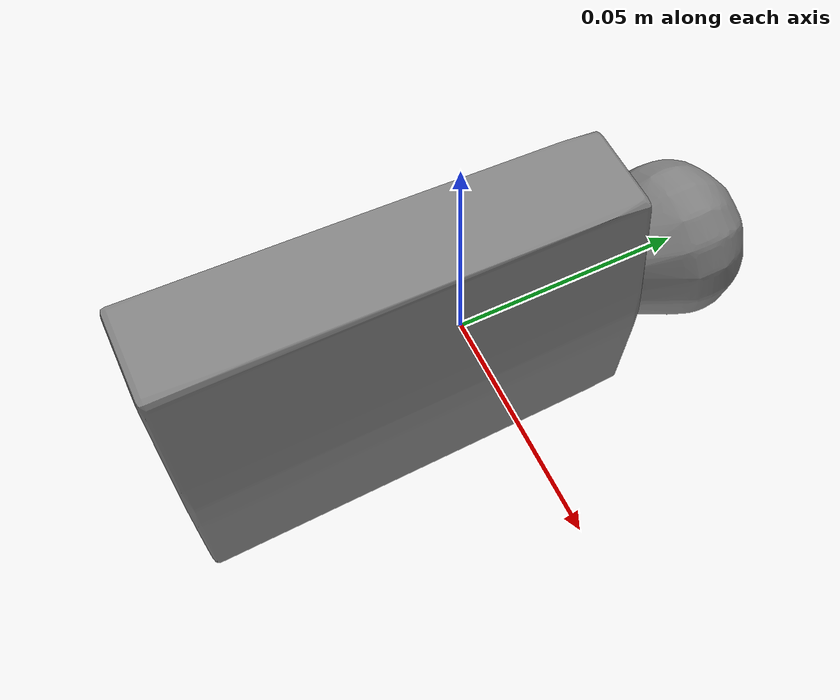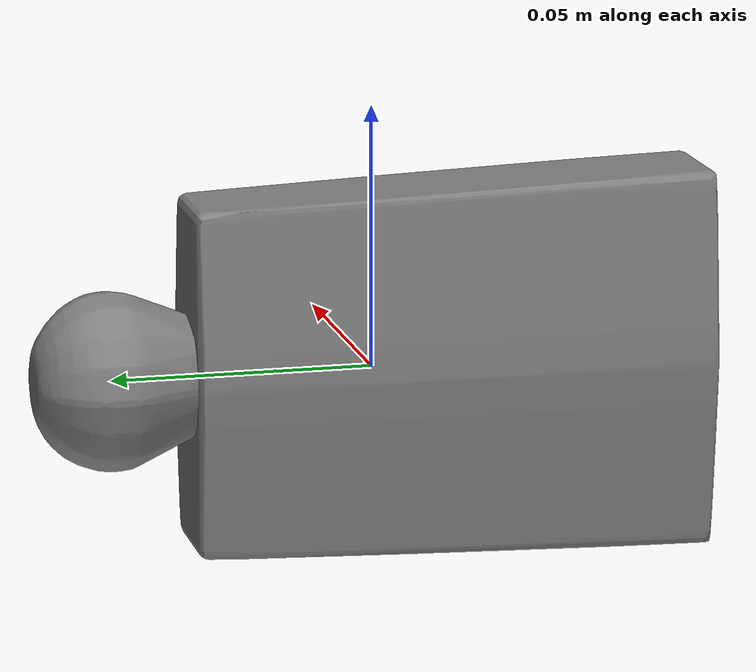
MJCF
<mujoco model="perfume_5353f01d845c4edca00896baa353253c">
  <default>
    <default class="visual">
      <geom type="mesh" contype="0" conaffinity="0" group="1"/>
    </default>
    <default class="collision">
      <geom type="mesh" condim="6" group="0"/>
    </default>
  </default>
  <asset>
    <texture type="2d" name="texture" file="material_0.png"/>
    <material name="Material.001" texture="texture" specular="0.5" shininess="0.25"/>
    <mesh file="visual_mesh.obj" name="visual_mesh"/>
    <mesh file="meshes/convex_piece_0.obj" name="convex_piece_0"/>
    <mesh file="meshes/convex_piece_1.obj" name="convex_piece_1"/>
  </asset>
  <worldbody>
    <body>
    <body name="object">
      <geom material="Material.001" mesh="visual_mesh" class="visual"/>
      <geom mesh="convex_piece_0" class="collision"/>
      <geom mesh="convex_piece_1" class="collision"/>
    </body>
      <site rgba="0 0 0 0" size="0.005" pos="0 0 -0.04" name="bottom_site" />
      <site rgba="0 0 0 0" size="0.005" pos="0 0 0.04" name="top_site" />
      <site rgba="0 0 0 0" size="0.005" pos="0.005 0.005 0" name="horizontal_radius_site" />
    </body>
  </worldbody>
</mujoco>
